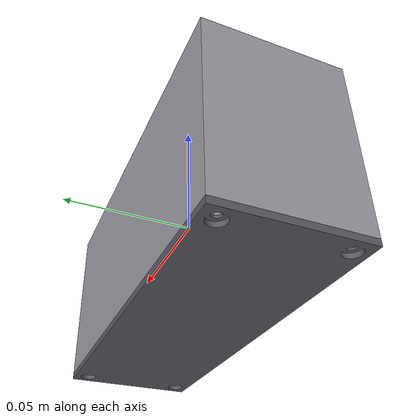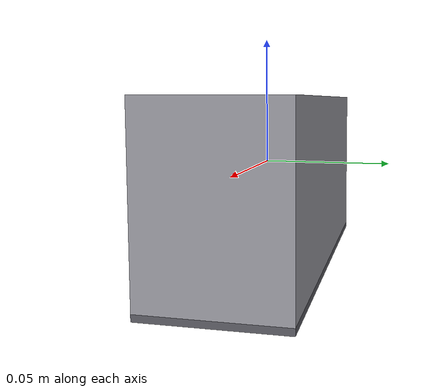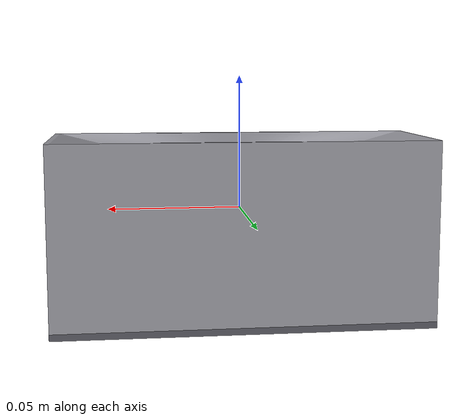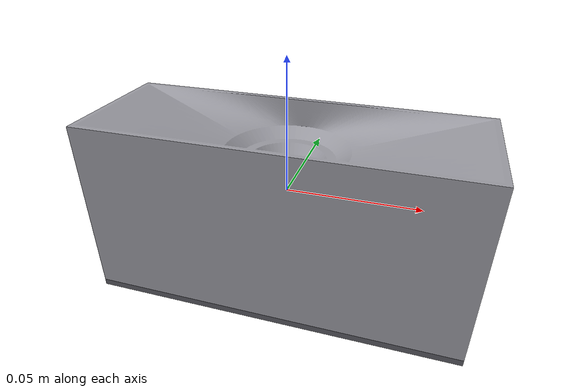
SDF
<?xml version="1.0" ?>
<sdf version="1.9">
  <model name="kursad_payload">
    <static>false</static>
    <link name="link">
      <gravity>true</gravity>
      <inertial>
        <!-- Sim mass, NOT the real 1.05 kg - see the payload_red note in the
             world SDF for why the simulated payloads are 0.15 kg. -->
        <mass>0.15</mass>
        <inertia>
          <ixx>9.25e-5</ixx><iyy>3.06e-4</iyy><izz>2.76e-4</izz>
          <ixy>0</ixy><ixz>0</ixz><iyz>0</iyz>
        </inertia>
      </inertial>

      <visual name="body_visual">
        <geometry><mesh><uri>model://kursad_payload/meshes/payload_body.stl</uri></mesh></geometry>
        <material>
          <ambient>0.45 0.45 0.48 1</ambient>
          <diffuse>0.60 0.60 0.63 1</diffuse>
        </material>
      </visual>
      <visual name="bottom_plate_visual">
        <geometry><mesh><uri>model://kursad_payload/meshes/payload_bottom_plate.stl</uri></mesh></geometry>
        <material>
          <ambient>0.25 0.25 0.27 1</ambient>
          <diffuse>0.35 0.35 0.38 1</diffuse>
        </material>
      </visual>

      <!-- KURSAD_BORE_COLLISION_START -->
      <collision name="bore_base">
        <pose>0.000000 0.000000 -0.017000 0.000000000 0.000000000 0.000000000</pose>
        <geometry><box><size>0.142000 0.052000 0.052000</size></box></geometry>
      </collision>
      <collision name="bore_fill_wall_00">
        <pose>-0.047600 0.013000 0.021750 0.000000000 0.000000000 0.000000000</pose>
        <geometry><box><size>0.046800 0.026000 0.010500</size></box></geometry>
      </collision>
      <collision name="bore_fill_wall_01">
        <pose>-0.047600 -0.013000 0.021750 0.000000000 0.000000000 0.000000000</pose>
        <geometry><box><size>0.046800 0.026000 0.010500</size></box></geometry>
      </collision>
      <collision name="bore_fill_wall_02">
        <pose>-0.021175 0.021003 0.021750 0.000000000 0.000000000 0.000000000</pose>
        <geometry><box><size>0.006050 0.009993 0.010500</size></box></geometry>
      </collision>
      <collision name="bore_fill_wall_03">
        <pose>-0.021175 -0.021003 0.021750 0.000000000 0.000000000 0.000000000</pose>
        <geometry><box><size>0.006050 0.009993 0.010500</size></box></geometry>
      </collision>
      <collision name="bore_fill_wall_04">
        <pose>-0.015125 0.023479 0.021750 0.000000000 0.000000000 0.000000000</pose>
        <geometry><box><size>0.006050 0.005042 0.010500</size></box></geometry>
      </collision>
      <collision name="bore_fill_wall_05">
        <pose>-0.015125 -0.023479 0.021750 0.000000000 0.000000000 0.000000000</pose>
        <geometry><box><size>0.006050 0.005042 0.010500</size></box></geometry>
      </collision>
      <collision name="bore_fill_wall_06">
        <pose>-0.009075 0.024716 0.021750 0.000000000 0.000000000 0.000000000</pose>
        <geometry><box><size>0.006050 0.002568 0.010500</size></box></geometry>
      </collision>
      <collision name="bore_fill_wall_07">
        <pose>-0.009075 -0.024716 0.021750 0.000000000 0.000000000 0.000000000</pose>
        <geometry><box><size>0.006050 0.002568 0.010500</size></box></geometry>
      </collision>
      <collision name="bore_fill_wall_08">
        <pose>-0.003025 0.025100 0.021750 0.000000000 0.000000000 0.000000000</pose>
        <geometry><box><size>0.006050 0.001800 0.010500</size></box></geometry>
      </collision>
      <collision name="bore_fill_wall_09">
        <pose>-0.003025 -0.025100 0.021750 0.000000000 0.000000000 0.000000000</pose>
        <geometry><box><size>0.006050 0.001800 0.010500</size></box></geometry>
      </collision>
      <collision name="bore_fill_wall_10">
        <pose>0.003025 0.025100 0.021750 0.000000000 0.000000000 0.000000000</pose>
        <geometry><box><size>0.006050 0.001800 0.010500</size></box></geometry>
      </collision>
      <collision name="bore_fill_wall_11">
        <pose>0.003025 -0.025100 0.021750 0.000000000 0.000000000 0.000000000</pose>
        <geometry><box><size>0.006050 0.001800 0.010500</size></box></geometry>
      </collision>
      <collision name="bore_fill_wall_12">
        <pose>0.009075 0.024716 0.021750 0.000000000 0.000000000 0.000000000</pose>
        <geometry><box><size>0.006050 0.002568 0.010500</size></box></geometry>
      </collision>
      <collision name="bore_fill_wall_13">
        <pose>0.009075 -0.024716 0.021750 0.000000000 0.000000000 0.000000000</pose>
        <geometry><box><size>0.006050 0.002568 0.010500</size></box></geometry>
      </collision>
      <collision name="bore_fill_wall_14">
        <pose>0.015125 0.023479 0.021750 0.000000000 0.000000000 0.000000000</pose>
        <geometry><box><size>0.006050 0.005042 0.010500</size></box></geometry>
      </collision>
      <collision name="bore_fill_wall_15">
        <pose>0.015125 -0.023479 0.021750 0.000000000 0.000000000 0.000000000</pose>
        <geometry><box><size>0.006050 0.005042 0.010500</size></box></geometry>
      </collision>
      <collision name="bore_fill_wall_16">
        <pose>0.021175 0.021003 0.021750 0.000000000 0.000000000 0.000000000</pose>
        <geometry><box><size>0.006050 0.009993 0.010500</size></box></geometry>
      </collision>
      <collision name="bore_fill_wall_17">
        <pose>0.021175 -0.021003 0.021750 0.000000000 0.000000000 0.000000000</pose>
        <geometry><box><size>0.006050 0.009993 0.010500</size></box></geometry>
      </collision>
      <collision name="bore_fill_wall_18">
        <pose>0.047600 0.013000 0.021750 0.000000000 0.000000000 0.000000000</pose>
        <geometry><box><size>0.046800 0.026000 0.010500</size></box></geometry>
      </collision>
      <collision name="bore_fill_wall_19">
        <pose>0.047600 -0.013000 0.021750 0.000000000 0.000000000 0.000000000</pose>
        <geometry><box><size>0.046800 0.026000 0.010500</size></box></geometry>
      </collision>
      <collision name="bore_wall_00">
        <pose>0.026424 0.000000 0.021750 0.000000000 0.000000000 0.000000000</pose>
        <geometry><box><size>0.007153 0.014080 0.010500</size></box></geometry>
      </collision>
      <collision name="bore_wall_01">
        <pose>0.022883 0.013212 0.021750 0.000000000 0.000000000 0.523598776</pose>
        <geometry><box><size>0.007153 0.014080 0.010500</size></box></geometry>
      </collision>
      <collision name="bore_wall_02">
        <pose>0.012200 0.021132 0.021750 0.000000000 0.000000000 1.047197551</pose>
        <geometry><box><size>0.003107 0.014080 0.010500</size></box></geometry>
      </collision>
      <collision name="bore_wall_03">
        <pose>0.000000 0.024401 0.021750 0.000000000 0.000000000 1.570796327</pose>
        <geometry><box><size>0.003107 0.014080 0.010500</size></box></geometry>
      </collision>
      <collision name="bore_wall_04">
        <pose>-0.012200 0.021132 0.021750 0.000000000 0.000000000 2.094395102</pose>
        <geometry><box><size>0.003107 0.014080 0.010500</size></box></geometry>
      </collision>
      <collision name="bore_wall_05">
        <pose>-0.022883 0.013212 0.021750 0.000000000 0.000000000 2.617993878</pose>
        <geometry><box><size>0.007153 0.014080 0.010500</size></box></geometry>
      </collision>
      <collision name="bore_wall_06">
        <pose>-0.026424 0.000000 0.021750 0.000000000 0.000000000 3.141592654</pose>
        <geometry><box><size>0.007153 0.014080 0.010500</size></box></geometry>
      </collision>
      <collision name="bore_wall_07">
        <pose>-0.022883 -0.013212 0.021750 0.000000000 0.000000000 3.665191429</pose>
        <geometry><box><size>0.007153 0.014080 0.010500</size></box></geometry>
      </collision>
      <collision name="bore_wall_08">
        <pose>-0.012200 -0.021132 0.021750 0.000000000 0.000000000 4.188790205</pose>
        <geometry><box><size>0.003107 0.014080 0.010500</size></box></geometry>
      </collision>
      <collision name="bore_wall_09">
        <pose>-0.000000 -0.024401 0.021750 0.000000000 0.000000000 4.712388980</pose>
        <geometry><box><size>0.003107 0.014080 0.010500</size></box></geometry>
      </collision>
      <collision name="bore_wall_10">
        <pose>0.012200 -0.021132 0.021750 0.000000000 0.000000000 5.235987756</pose>
        <geometry><box><size>0.003107 0.014080 0.010500</size></box></geometry>
      </collision>
      <collision name="bore_wall_11">
        <pose>0.022883 -0.013212 0.021750 0.000000000 0.000000000 5.759586532</pose>
        <geometry><box><size>0.007153 0.014080 0.010500</size></box></geometry>
      </collision>
      <collision name="bore_fill_chamfer1_00">
        <pose>-0.047235 0.013000 0.014625 0.000000000 0.000000000 0.000000000</pose>
        <geometry><box><size>0.047530 0.026000 0.003750</size></box></geometry>
      </collision>
      <collision name="bore_fill_chamfer1_01">
        <pose>-0.047235 -0.013000 0.014625 0.000000000 0.000000000 0.000000000</pose>
        <geometry><box><size>0.047530 0.026000 0.003750</size></box></geometry>
      </collision>
      <collision name="bore_fill_chamfer1_02">
        <pose>-0.020536 0.020762 0.014625 0.000000000 0.000000000 0.000000000</pose>
        <geometry><box><size>0.005867 0.010476 0.003750</size></box></geometry>
      </collision>
      <collision name="bore_fill_chamfer1_03">
        <pose>-0.020536 -0.020762 0.014625 0.000000000 0.000000000 0.000000000</pose>
        <geometry><box><size>0.005867 0.010476 0.003750</size></box></geometry>
      </collision>
      <collision name="bore_fill_chamfer1_04">
        <pose>-0.014669 0.023163 0.014625 0.000000000 0.000000000 0.000000000</pose>
        <geometry><box><size>0.005867 0.005674 0.003750</size></box></geometry>
      </collision>
      <collision name="bore_fill_chamfer1_05">
        <pose>-0.014669 -0.023163 0.014625 0.000000000 0.000000000 0.000000000</pose>
        <geometry><box><size>0.005867 0.005674 0.003750</size></box></geometry>
      </collision>
      <collision name="bore_fill_chamfer1_06">
        <pose>-0.008801 0.024362 0.014625 0.000000000 0.000000000 0.000000000</pose>
        <geometry><box><size>0.005867 0.003275 0.003750</size></box></geometry>
      </collision>
      <collision name="bore_fill_chamfer1_07">
        <pose>-0.008801 -0.024362 0.014625 0.000000000 0.000000000 0.000000000</pose>
        <geometry><box><size>0.005867 0.003275 0.003750</size></box></geometry>
      </collision>
      <collision name="bore_fill_chamfer1_08">
        <pose>-0.002934 0.024735 0.014625 0.000000000 0.000000000 0.000000000</pose>
        <geometry><box><size>0.005867 0.002530 0.003750</size></box></geometry>
      </collision>
      <collision name="bore_fill_chamfer1_09">
        <pose>-0.002934 -0.024735 0.014625 0.000000000 0.000000000 0.000000000</pose>
        <geometry><box><size>0.005867 0.002530 0.003750</size></box></geometry>
      </collision>
      <collision name="bore_fill_chamfer1_10">
        <pose>0.002934 0.024735 0.014625 0.000000000 0.000000000 0.000000000</pose>
        <geometry><box><size>0.005867 0.002530 0.003750</size></box></geometry>
      </collision>
      <collision name="bore_fill_chamfer1_11">
        <pose>0.002934 -0.024735 0.014625 0.000000000 0.000000000 0.000000000</pose>
        <geometry><box><size>0.005867 0.002530 0.003750</size></box></geometry>
      </collision>
      <collision name="bore_fill_chamfer1_12">
        <pose>0.008801 0.024362 0.014625 0.000000000 0.000000000 0.000000000</pose>
        <geometry><box><size>0.005867 0.003275 0.003750</size></box></geometry>
      </collision>
      <collision name="bore_fill_chamfer1_13">
        <pose>0.008801 -0.024362 0.014625 0.000000000 0.000000000 0.000000000</pose>
        <geometry><box><size>0.005867 0.003275 0.003750</size></box></geometry>
      </collision>
      <collision name="bore_fill_chamfer1_14">
        <pose>0.014669 0.023163 0.014625 0.000000000 0.000000000 0.000000000</pose>
        <geometry><box><size>0.005867 0.005674 0.003750</size></box></geometry>
      </collision>
      <collision name="bore_fill_chamfer1_15">
        <pose>0.014669 -0.023163 0.014625 0.000000000 0.000000000 0.000000000</pose>
        <geometry><box><size>0.005867 0.005674 0.003750</size></box></geometry>
      </collision>
      <collision name="bore_fill_chamfer1_16">
        <pose>0.020536 0.020762 0.014625 0.000000000 0.000000000 0.000000000</pose>
        <geometry><box><size>0.005867 0.010476 0.003750</size></box></geometry>
      </collision>
      <collision name="bore_fill_chamfer1_17">
        <pose>0.020536 -0.020762 0.014625 0.000000000 0.000000000 0.000000000</pose>
        <geometry><box><size>0.005867 0.010476 0.003750</size></box></geometry>
      </collision>
      <collision name="bore_fill_chamfer1_18">
        <pose>0.047235 0.013000 0.014625 0.000000000 0.000000000 0.000000000</pose>
        <geometry><box><size>0.047530 0.026000 0.003750</size></box></geometry>
      </collision>
      <collision name="bore_fill_chamfer1_19">
        <pose>0.047235 -0.013000 0.014625 0.000000000 0.000000000 0.000000000</pose>
        <geometry><box><size>0.047530 0.026000 0.003750</size></box></geometry>
      </collision>
      <collision name="bore_chamfer1_00">
        <pose>0.019945 0.000000 0.012896 0.000000000 -0.411260474 0.000000000</pose>
        <geometry><box><size>0.010560 0.014080 0.004286</size></box></geometry>
      </collision>
      <collision name="bore_chamfer1_01">
        <pose>0.017273 0.009973 0.012896 0.000000000 -0.411260474 0.523598776</pose>
        <geometry><box><size>0.010560 0.014080 0.004286</size></box></geometry>
      </collision>
      <collision name="bore_chamfer1_02">
        <pose>0.009973 0.017273 0.012896 0.000000000 -0.411260474 1.047197551</pose>
        <geometry><box><size>0.010560 0.014080 0.004286</size></box></geometry>
      </collision>
      <collision name="bore_chamfer1_03">
        <pose>0.000000 0.019945 0.012896 0.000000000 -0.411260474 1.570796327</pose>
        <geometry><box><size>0.010560 0.014080 0.004286</size></box></geometry>
      </collision>
      <collision name="bore_chamfer1_04">
        <pose>-0.009973 0.017273 0.012896 0.000000000 -0.411260474 2.094395102</pose>
        <geometry><box><size>0.010560 0.014080 0.004286</size></box></geometry>
      </collision>
      <collision name="bore_chamfer1_05">
        <pose>-0.017273 0.009973 0.012896 0.000000000 -0.411260474 2.617993878</pose>
        <geometry><box><size>0.010560 0.014080 0.004286</size></box></geometry>
      </collision>
      <collision name="bore_chamfer1_06">
        <pose>-0.019945 0.000000 0.012896 0.000000000 -0.411260474 3.141592654</pose>
        <geometry><box><size>0.010560 0.014080 0.004286</size></box></geometry>
      </collision>
      <collision name="bore_chamfer1_07">
        <pose>-0.017273 -0.009973 0.012896 0.000000000 -0.411260474 3.665191429</pose>
        <geometry><box><size>0.010560 0.014080 0.004286</size></box></geometry>
      </collision>
      <collision name="bore_chamfer1_08">
        <pose>-0.009973 -0.017273 0.012896 0.000000000 -0.411260474 4.188790205</pose>
        <geometry><box><size>0.010560 0.014080 0.004286</size></box></geometry>
      </collision>
      <collision name="bore_chamfer1_09">
        <pose>-0.000000 -0.019945 0.012896 0.000000000 -0.411260474 4.712388980</pose>
        <geometry><box><size>0.010560 0.014080 0.004286</size></box></geometry>
      </collision>
      <collision name="bore_chamfer1_10">
        <pose>0.009973 -0.017273 0.012896 0.000000000 -0.411260474 5.235987756</pose>
        <geometry><box><size>0.010560 0.014080 0.004286</size></box></geometry>
      </collision>
      <collision name="bore_chamfer1_11">
        <pose>0.017273 -0.009973 0.012896 0.000000000 -0.411260474 5.759586532</pose>
        <geometry><box><size>0.010560 0.014080 0.004286</size></box></geometry>
      </collision>
      <collision name="bore_fill_chamfer2_00">
        <pose>-0.042860 0.013000 0.010875 0.000000000 0.000000000 0.000000000</pose>
        <geometry><box><size>0.056280 0.026000 0.003750</size></box></geometry>
      </collision>
      <collision name="bore_fill_chamfer2_01">
        <pose>-0.042860 -0.013000 0.010875 0.000000000 0.000000000 0.000000000</pose>
        <geometry><box><size>0.056280 0.026000 0.003750</size></box></geometry>
      </collision>
      <collision name="bore_fill_chamfer2_02">
        <pose>0.000000 0.020360 0.010875 0.000000000 0.000000000 0.000000000</pose>
        <geometry><box><size>0.029440 0.011280 0.003750</size></box></geometry>
      </collision>
      <collision name="bore_fill_chamfer2_03">
        <pose>0.000000 -0.020360 0.010875 0.000000000 0.000000000 0.000000000</pose>
        <geometry><box><size>0.029440 0.011280 0.003750</size></box></geometry>
      </collision>
      <collision name="bore_fill_chamfer2_04">
        <pose>0.042860 0.013000 0.010875 0.000000000 0.000000000 0.000000000</pose>
        <geometry><box><size>0.056280 0.026000 0.003750</size></box></geometry>
      </collision>
      <collision name="bore_fill_chamfer2_05">
        <pose>0.042860 -0.013000 0.010875 0.000000000 0.000000000 0.000000000</pose>
        <geometry><box><size>0.056280 0.026000 0.003750</size></box></geometry>
      </collision>
      <collision name="bore_chamfer2_00">
        <pose>0.013812 0.000000 0.009698 0.000000000 -0.828582980 0.000000000</pose>
        <geometry><box><size>0.005088 0.008781 0.003482</size></box></geometry>
      </collision>
      <collision name="bore_chamfer2_01">
        <pose>0.011962 0.006906 0.009698 0.000000000 -0.828582980 0.523598776</pose>
        <geometry><box><size>0.005088 0.008781 0.003482</size></box></geometry>
      </collision>
      <collision name="bore_chamfer2_02">
        <pose>0.006906 0.011962 0.009698 0.000000000 -0.828582980 1.047197551</pose>
        <geometry><box><size>0.005088 0.008781 0.003482</size></box></geometry>
      </collision>
      <collision name="bore_chamfer2_03">
        <pose>0.000000 0.013812 0.009698 0.000000000 -0.828582980 1.570796327</pose>
        <geometry><box><size>0.005088 0.008781 0.003482</size></box></geometry>
      </collision>
      <collision name="bore_chamfer2_04">
        <pose>-0.006906 0.011962 0.009698 0.000000000 -0.828582980 2.094395102</pose>
        <geometry><box><size>0.005088 0.008781 0.003482</size></box></geometry>
      </collision>
      <collision name="bore_chamfer2_05">
        <pose>-0.011962 0.006906 0.009698 0.000000000 -0.828582980 2.617993878</pose>
        <geometry><box><size>0.005088 0.008781 0.003482</size></box></geometry>
      </collision>
      <collision name="bore_chamfer2_06">
        <pose>-0.013812 0.000000 0.009698 0.000000000 -0.828582980 3.141592654</pose>
        <geometry><box><size>0.005088 0.008781 0.003482</size></box></geometry>
      </collision>
      <collision name="bore_chamfer2_07">
        <pose>-0.011962 -0.006906 0.009698 0.000000000 -0.828582980 3.665191429</pose>
        <geometry><box><size>0.005088 0.008781 0.003482</size></box></geometry>
      </collision>
      <collision name="bore_chamfer2_08">
        <pose>-0.006906 -0.011962 0.009698 0.000000000 -0.828582980 4.188790205</pose>
        <geometry><box><size>0.005088 0.008781 0.003482</size></box></geometry>
      </collision>
      <collision name="bore_chamfer2_09">
        <pose>-0.000000 -0.013812 0.009698 0.000000000 -0.828582980 4.712388980</pose>
        <geometry><box><size>0.005088 0.008781 0.003482</size></box></geometry>
      </collision>
      <collision name="bore_chamfer2_10">
        <pose>0.006906 -0.011962 0.009698 0.000000000 -0.828582980 5.235987756</pose>
        <geometry><box><size>0.005088 0.008781 0.003482</size></box></geometry>
      </collision>
      <collision name="bore_chamfer2_11">
        <pose>0.011962 -0.006906 0.009698 0.000000000 -0.828582980 5.759586532</pose>
        <geometry><box><size>0.005088 0.008781 0.003482</size></box></geometry>
      </collision>
      <!-- KURSAD_BORE_COLLISION_END -->
    </link>
  </model>
</sdf>
